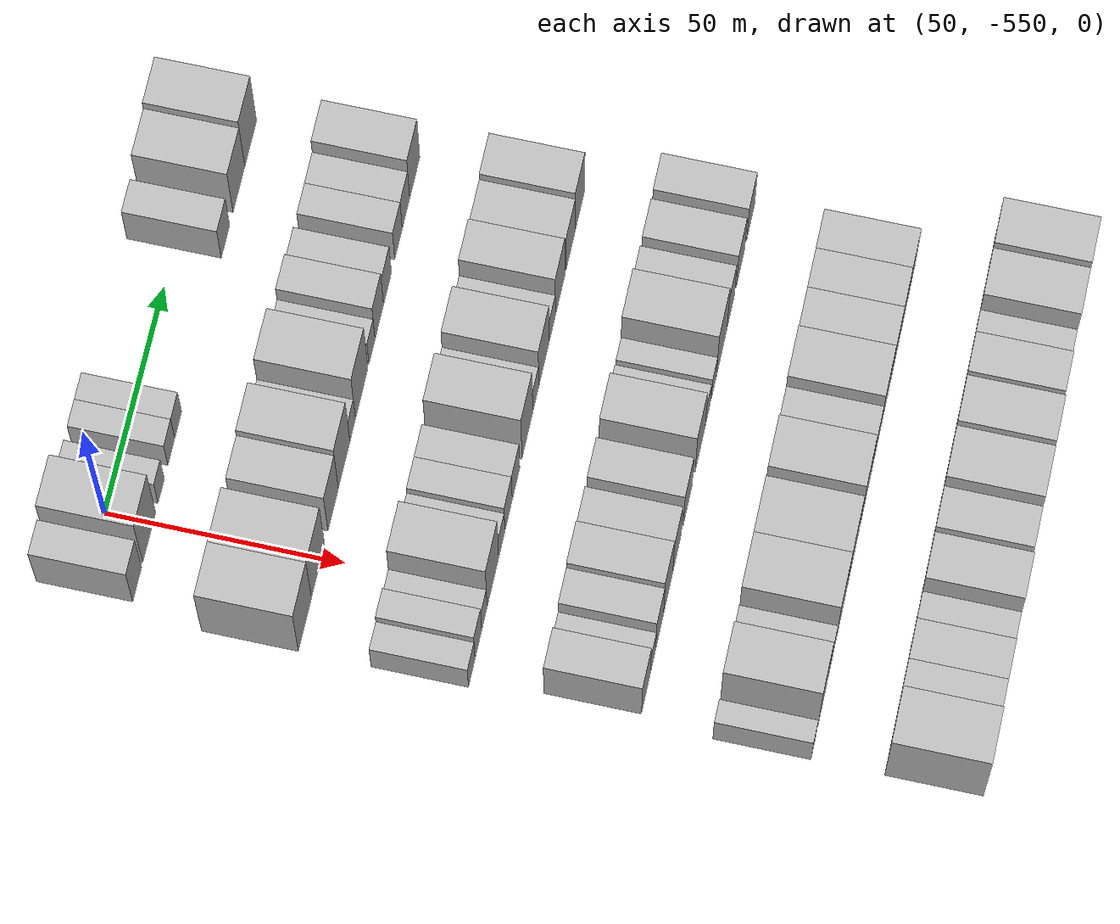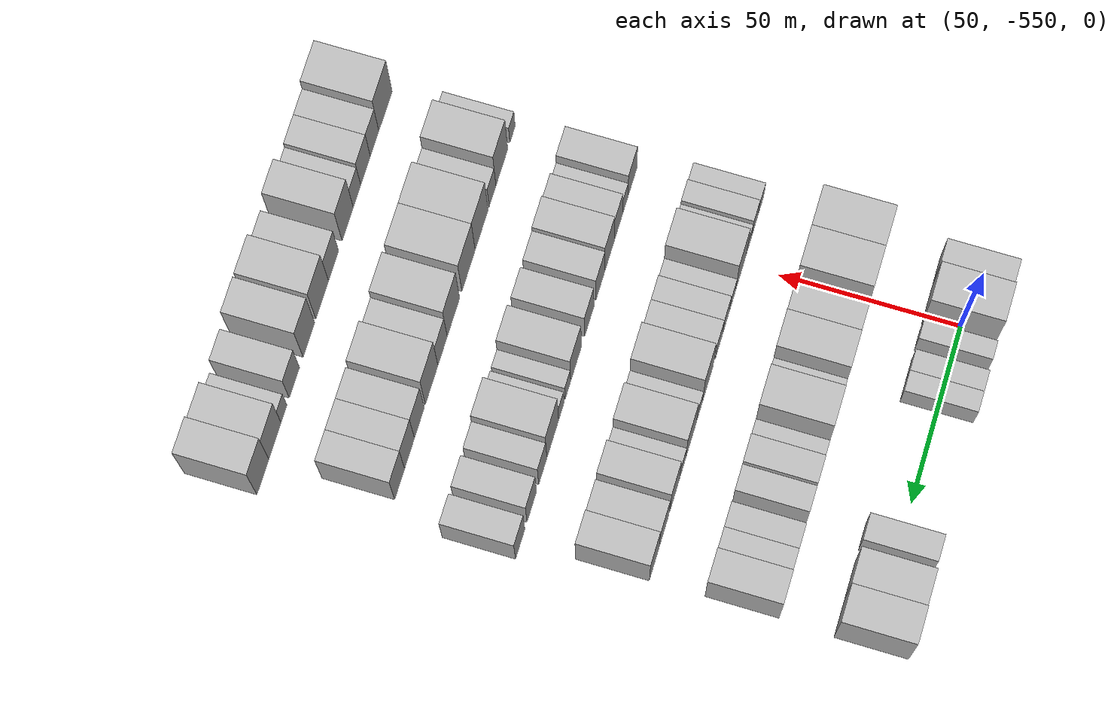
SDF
<sdf version="1.6">
 <world name="default">
  <model name="building_1">
   <static>1</static>
   <pose>50.0000 -563.3075 0 0.000000 0.000000 0.000000</pose>
   <link name="link">
    <pose>0 0 9.00 0 0 0</pose>
    <collision name="collision"><geometry><box><size>20.0000 7.3849 18.0000</size></box></geometry></collision>
    <visual name="visual">
     <cast_shadows>0</cast_shadows>
     <geometry><box><size>20.0000 7.3849 18.0000</size></box></geometry>
     <material>
      <script>
       <uri>model://HANNAS_wall/materials/scripts</uri>
       <uri>model://HANNAS_wall/materials/textures</uri>
       <name>vrc/HANNAS_wall</name>
      </script>
     </material>
    </visual>
   </link>
  </model>
  <model name="building_2">
   <static>1</static>
   <pose>50.0000 -553.1551 0 0.000000 0.000000 0.000000</pose>
   <link name="link">
    <pose>0 0 12.00 0 0 0</pose>
    <collision name="collision"><geometry><box><size>20.0000 10.9201 24.0000</size></box></geometry></collision>
    <visual name="visual">
     <cast_shadows>0</cast_shadows>
     <geometry><box><size>20.0000 10.9201 24.0000</size></box></geometry>
     <material>
      <script>
       <uri>model://HANNAS_wall/materials/scripts</uri>
       <uri>model://HANNAS_wall/materials/textures</uri>
       <name>vrc/HANNAS_wall</name>
      </script>
     </material>
    </visual>
   </link>
  </model>
  <model name="building_3">
   <static>1</static>
   <pose>50.0000 -543.0304 0 0.000000 0.000000 0.000000</pose>
   <link name="link">
    <pose>0 0 6.00 0 0 0</pose>
    <collision name="collision"><geometry><box><size>20.0000 5.3293 12.0000</size></box></geometry></collision>
    <visual name="visual">
     <cast_shadows>0</cast_shadows>
     <geometry><box><size>20.0000 5.3293 12.0000</size></box></geometry>
     <material>
      <script>
       <uri>model://HANNAS_wall/materials/scripts</uri>
       <uri>model://HANNAS_wall/materials/textures</uri>
       <name>vrc/HANNAS_wall</name>
      </script>
     </material>
    </visual>
   </link>
  </model>
  <model name="building_4">
   <static>1</static>
   <pose>50.0000 -534.4104 0 0.000000 0.000000 0.000000</pose>
   <link name="link">
    <pose>0 0 6.00 0 0 0</pose>
    <collision name="collision"><geometry><box><size>20.0000 5.9105 12.0000</size></box></geometry></collision>
    <visual name="visual">
     <cast_shadows>0</cast_shadows>
     <geometry><box><size>20.0000 5.9105 12.0000</size></box></geometry>
     <material>
      <script>
       <uri>model://HANNAS_wall/materials/scripts</uri>
       <uri>model://HANNAS_wall/materials/textures</uri>
       <name>vrc/HANNAS_wall</name>
      </script>
     </material>
    </visual>
   </link>
  </model>
  <model name="building_5">
   <static>1</static>
   <pose>50.0000 -528.5339 0 0.000000 0.000000 0.000000</pose>
   <link name="link">
    <pose>0 0 6.00 0 0 0</pose>
    <collision name="collision"><geometry><box><size>20.0000 5.8426 12.0000</size></box></geometry></collision>
    <visual name="visual">
     <cast_shadows>0</cast_shadows>
     <geometry><box><size>20.0000 5.8426 12.0000</size></box></geometry>
     <material>
      <script>
       <uri>model://HANNAS_wall/materials/scripts</uri>
       <uri>model://HANNAS_wall/materials/textures</uri>
       <name>vrc/HANNAS_wall</name>
      </script>
     </material>
    </visual>
   </link>
  </model>
  <model name="building_6">
   <static>1</static>
   <pose>50.0000 -487.5675 0 0.000000 0.000000 0.000000</pose>
   <link name="link">
    <pose>0 0 7.50 0 0 0</pose>
    <collision name="collision"><geometry><box><size>20.0000 7.3633 15.0000</size></box></geometry></collision>
    <visual name="visual">
     <cast_shadows>0</cast_shadows>
     <geometry><box><size>20.0000 7.3633 15.0000</size></box></geometry>
     <material>
      <script>
       <uri>model://HANNAS_wall/materials/scripts</uri>
       <uri>model://HANNAS_wall/materials/textures</uri>
       <name>vrc/HANNAS_wall</name>
      </script>
     </material>
    </visual>
   </link>
  </model>
  <model name="building_7">
   <static>1</static>
   <pose>50.0000 -475.6671 0 0.000000 0.000000 0.000000</pose>
   <link name="link">
    <pose>0 0 10.50 0 0 0</pose>
    <collision name="collision"><geometry><box><size>20.0000 10.4374 21.0000</size></box></geometry></collision>
    <visual name="visual">
     <cast_shadows>0</cast_shadows>
     <geometry><box><size>20.0000 10.4374 21.0000</size></box></geometry>
     <material>
      <script>
       <uri>model://HANNAS_wall/materials/scripts</uri>
       <uri>model://HANNAS_wall/materials/textures</uri>
       <name>vrc/HANNAS_wall</name>
      </script>
     </material>
    </visual>
   </link>
  </model>
  <model name="building_8">
   <static>1</static>
   <pose>50.0000 -465.2622 0 0.000000 0.000000 0.000000</pose>
   <link name="link">
    <pose>0 0 12.00 0 0 0</pose>
    <collision name="collision"><geometry><box><size>20.0000 10.3725 24.0000</size></box></geometry></collision>
    <visual name="visual">
     <cast_shadows>0</cast_shadows>
     <geometry><box><size>20.0000 10.3725 24.0000</size></box></geometry>
     <material>
      <script>
       <uri>model://HANNAS_wall/materials/scripts</uri>
       <uri>model://HANNAS_wall/materials/textures</uri>
       <name>vrc/HANNAS_wall</name>
      </script>
     </material>
    </visual>
   </link>
  </model>
  <model name="building_119">
   <static>1</static>
   <pose>85.0000 -564.2835 0 0.000000 0.000000 0.000000</pose>
   <link name="link">
    <pose>0 0 12.00 0 0 0</pose>
    <collision name="collision"><geometry><box><size>20.0000 11.4330 24.0000</size></box></geometry></collision>
    <visual name="visual">
     <cast_shadows>0</cast_shadows>
     <geometry><box><size>20.0000 11.4330 24.0000</size></box></geometry>
     <material>
      <script>
       <uri>model://HANNAS_wall/materials/scripts</uri>
       <uri>model://HANNAS_wall/materials/textures</uri>
       <name>vrc/HANNAS_wall</name>
      </script>
     </material>
    </visual>
   </link>
  </model>
  <model name="building_120">
   <static>1</static>
   <pose>85.0000 -552.7963 0 0.000000 0.000000 0.000000</pose>
   <link name="link">
    <pose>0 0 12.00 0 0 0</pose>
    <collision name="collision"><geometry><box><size>20.0000 11.5414 24.0000</size></box></geometry></collision>
    <visual name="visual">
     <cast_shadows>0</cast_shadows>
     <geometry><box><size>20.0000 11.5414 24.0000</size></box></geometry>
     <material>
      <script>
       <uri>model://HANNAS_wall/materials/scripts</uri>
       <uri>model://HANNAS_wall/materials/textures</uri>
       <name>vrc/HANNAS_wall</name>
      </script>
     </material>
    </visual>
   </link>
  </model>
  <model name="building_121">
   <static>1</static>
   <pose>85.0000 -539.4333 0 0.000000 0.000000 0.000000</pose>
   <link name="link">
    <pose>0 0 10.50 0 0 0</pose>
    <collision name="collision"><geometry><box><size>20.0000 9.1845 21.0000</size></box></geometry></collision>
    <visual name="visual">
     <cast_shadows>0</cast_shadows>
     <geometry><box><size>20.0000 9.1845 21.0000</size></box></geometry>
     <material>
      <script>
       <uri>model://HANNAS_wall/materials/scripts</uri>
       <uri>model://HANNAS_wall/materials/textures</uri>
       <name>vrc/HANNAS_wall</name>
      </script>
     </material>
    </visual>
   </link>
  </model>
  <model name="building_122">
   <static>1</static>
   <pose>85.0000 -529.6742 0 0.000000 0.000000 0.000000</pose>
   <link name="link">
    <pose>0 0 12.00 0 0 0</pose>
    <collision name="collision"><geometry><box><size>20.0000 10.3337 24.0000</size></box></geometry></collision>
    <visual name="visual">
     <cast_shadows>0</cast_shadows>
     <geometry><box><size>20.0000 10.3337 24.0000</size></box></geometry>
     <material>
      <script>
       <uri>model://HANNAS_wall/materials/scripts</uri>
       <uri>model://HANNAS_wall/materials/textures</uri>
       <name>vrc/HANNAS_wall</name>
      </script>
     </material>
    </visual>
   </link>
  </model>
  <model name="building_123">
   <static>1</static>
   <pose>85.0000 -521.9980 0 0.000000 0.000000 0.000000</pose>
   <link name="link">
    <pose>0 0 6.00 0 0 0</pose>
    <collision name="collision"><geometry><box><size>20.0000 5.0187 12.0000</size></box></geometry></collision>
    <visual name="visual">
     <cast_shadows>0</cast_shadows>
     <geometry><box><size>20.0000 5.0187 12.0000</size></box></geometry>
     <material>
      <script>
       <uri>model://HANNAS_wall/materials/scripts</uri>
       <uri>model://HANNAS_wall/materials/textures</uri>
       <name>vrc/HANNAS_wall</name>
      </script>
     </material>
    </visual>
   </link>
  </model>
  <model name="building_124">
   <static>1</static>
   <pose>85.0000 -513.9139 0 0.000000 0.000000 0.000000</pose>
   <link name="link">
    <pose>0 0 12.00 0 0 0</pose>
    <collision name="collision"><geometry><box><size>20.0000 11.1494 24.0000</size></box></geometry></collision>
    <visual name="visual">
     <cast_shadows>0</cast_shadows>
     <geometry><box><size>20.0000 11.1494 24.0000</size></box></geometry>
     <material>
      <script>
       <uri>model://HANNAS_wall/materials/scripts</uri>
       <uri>model://HANNAS_wall/materials/textures</uri>
       <name>vrc/HANNAS_wall</name>
      </script>
     </material>
    </visual>
   </link>
  </model>
  <model name="building_125">
   <static>1</static>
   <pose>85.0000 -504.5936 0 0.000000 0.000000 0.000000</pose>
   <link name="link">
    <pose>0 0 6.00 0 0 0</pose>
    <collision name="collision"><geometry><box><size>20.0000 5.4911 12.0000</size></box></geometry></collision>
    <visual name="visual">
     <cast_shadows>0</cast_shadows>
     <geometry><box><size>20.0000 5.4911 12.0000</size></box></geometry>
     <material>
      <script>
       <uri>model://HANNAS_wall/materials/scripts</uri>
       <uri>model://HANNAS_wall/materials/textures</uri>
       <name>vrc/HANNAS_wall</name>
      </script>
     </material>
    </visual>
   </link>
  </model>
  <model name="building_126">
   <static>1</static>
   <pose>85.0000 -497.9878 0 0.000000 0.000000 0.000000</pose>
   <link name="link">
    <pose>0 0 9.00 0 0 0</pose>
    <collision name="collision"><geometry><box><size>20.0000 7.7206 18.0000</size></box></geometry></collision>
    <visual name="visual">
     <cast_shadows>0</cast_shadows>
     <geometry><box><size>20.0000 7.7206 18.0000</size></box></geometry>
     <material>
      <script>
       <uri>model://HANNAS_wall/materials/scripts</uri>
       <uri>model://HANNAS_wall/materials/textures</uri>
       <name>vrc/HANNAS_wall</name>
      </script>
     </material>
    </visual>
   </link>
  </model>
  <model name="building_127">
   <static>1</static>
   <pose>85.0000 -490.5334 0 0.000000 0.000000 0.000000</pose>
   <link name="link">
    <pose>0 0 7.50 0 0 0</pose>
    <collision name="collision"><geometry><box><size>20.0000 7.1882 15.0000</size></box></geometry></collision>
    <visual name="visual">
     <cast_shadows>0</cast_shadows>
     <geometry><box><size>20.0000 7.1882 15.0000</size></box></geometry>
     <material>
      <script>
       <uri>model://HANNAS_wall/materials/scripts</uri>
       <uri>model://HANNAS_wall/materials/textures</uri>
       <name>vrc/HANNAS_wall</name>
      </script>
     </material>
    </visual>
   </link>
  </model>
  <model name="building_128">
   <static>1</static>
   <pose>85.0000 -480.4844 0 0.000000 0.000000 0.000000</pose>
   <link name="link">
    <pose>0 0 7.50 0 0 0</pose>
    <collision name="collision"><geometry><box><size>20.0000 6.9098 15.0000</size></box></geometry></collision>
    <visual name="visual">
     <cast_shadows>0</cast_shadows>
     <geometry><box><size>20.0000 6.9098 15.0000</size></box></geometry>
     <material>
      <script>
       <uri>model://HANNAS_wall/materials/scripts</uri>
       <uri>model://HANNAS_wall/materials/textures</uri>
       <name>vrc/HANNAS_wall</name>
      </script>
     </material>
    </visual>
   </link>
  </model>
  <model name="building_129">
   <static>1</static>
   <pose>85.0000 -473.5770 0 0.000000 0.000000 0.000000</pose>
   <link name="link">
    <pose>0 0 7.50 0 0 0</pose>
    <collision name="collision"><geometry><box><size>20.0000 6.9050 15.0000</size></box></geometry></collision>
    <visual name="visual">
     <cast_shadows>0</cast_shadows>
     <geometry><box><size>20.0000 6.9050 15.0000</size></box></geometry>
     <material>
      <script>
       <uri>model://HANNAS_wall/materials/scripts</uri>
       <uri>model://HANNAS_wall/materials/textures</uri>
       <name>vrc/HANNAS_wall</name>
      </script>
     </material>
    </visual>
   </link>
  </model>
  <model name="building_130">
   <static>1</static>
   <pose>85.0000 -465.4821 0 0.000000 0.000000 0.000000</pose>
   <link name="link">
    <pose>0 0 10.50 0 0 0</pose>
    <collision name="collision"><geometry><box><size>20.0000 9.2847 21.0000</size></box></geometry></collision>
    <visual name="visual">
     <cast_shadows>0</cast_shadows>
     <geometry><box><size>20.0000 9.2847 21.0000</size></box></geometry>
     <material>
      <script>
       <uri>model://HANNAS_wall/materials/scripts</uri>
       <uri>model://HANNAS_wall/materials/textures</uri>
       <name>vrc/HANNAS_wall</name>
      </script>
     </material>
    </visual>
   </link>
  </model>
  <model name="building_248">
   <static>1</static>
   <pose>120.0000 -567.0291 0 0.000000 0.000000 0.000000</pose>
   <link name="link">
    <pose>0 0 6.00 0 0 0</pose>
    <collision name="collision"><geometry><box><size>20.0000 5.9418 12.0000</size></box></geometry></collision>
    <visual name="visual">
     <cast_shadows>0</cast_shadows>
     <geometry><box><size>20.0000 5.9418 12.0000</size></box></geometry>
     <material>
      <script>
       <uri>model://HANNAS_wall/materials/scripts</uri>
       <uri>model://HANNAS_wall/materials/textures</uri>
       <name>vrc/HANNAS_wall</name>
      </script>
     </material>
    </visual>
   </link>
  </model>
  <model name="building_249">
   <static>1</static>
   <pose>120.0000 -560.9883 0 0.000000 0.000000 0.000000</pose>
   <link name="link">
    <pose>0 0 7.50 0 0 0</pose>
    <collision name="collision"><geometry><box><size>20.0000 6.1397 15.0000</size></box></geometry></collision>
    <visual name="visual">
     <cast_shadows>0</cast_shadows>
     <geometry><box><size>20.0000 6.1397 15.0000</size></box></geometry>
     <material>
      <script>
       <uri>model://HANNAS_wall/materials/scripts</uri>
       <uri>model://HANNAS_wall/materials/textures</uri>
       <name>vrc/HANNAS_wall</name>
      </script>
     </material>
    </visual>
   </link>
  </model>
  <model name="building_250">
   <static>1</static>
   <pose>120.0000 -555.4158 0 0.000000 0.000000 0.000000</pose>
   <link name="link">
    <pose>0 0 6.00 0 0 0</pose>
    <collision name="collision"><geometry><box><size>20.0000 5.0054 12.0000</size></box></geometry></collision>
    <visual name="visual">
     <cast_shadows>0</cast_shadows>
     <geometry><box><size>20.0000 5.0054 12.0000</size></box></geometry>
     <material>
      <script>
       <uri>model://HANNAS_wall/materials/scripts</uri>
       <uri>model://HANNAS_wall/materials/textures</uri>
       <name>vrc/HANNAS_wall</name>
      </script>
     </material>
    </visual>
   </link>
  </model>
  <model name="building_251">
   <static>1</static>
   <pose>120.0000 -547.5967 0 0.000000 0.000000 0.000000</pose>
   <link name="link">
    <pose>0 0 12.00 0 0 0</pose>
    <collision name="collision"><geometry><box><size>20.0000 10.6328 24.0000</size></box></geometry></collision>
    <visual name="visual">
     <cast_shadows>0</cast_shadows>
     <geometry><box><size>20.0000 10.6328 24.0000</size></box></geometry>
     <material>
      <script>
       <uri>model://HANNAS_wall/materials/scripts</uri>
       <uri>model://HANNAS_wall/materials/textures</uri>
       <name>vrc/HANNAS_wall</name>
      </script>
     </material>
    </visual>
   </link>
  </model>
  <model name="building_252">
   <static>1</static>
   <pose>120.0000 -539.4026 0 0.000000 0.000000 0.000000</pose>
   <link name="link">
    <pose>0 0 6.00 0 0 0</pose>
    <collision name="collision"><geometry><box><size>20.0000 5.7554 12.0000</size></box></geometry></collision>
    <visual name="visual">
     <cast_shadows>0</cast_shadows>
     <geometry><box><size>20.0000 5.7554 12.0000</size></box></geometry>
     <material>
      <script>
       <uri>model://HANNAS_wall/materials/scripts</uri>
       <uri>model://HANNAS_wall/materials/textures</uri>
       <name>vrc/HANNAS_wall</name>
      </script>
     </material>
    </visual>
   </link>
  </model>
  <model name="building_253">
   <static>1</static>
   <pose>120.0000 -533.1010 0 0.000000 0.000000 0.000000</pose>
   <link name="link">
    <pose>0 0 7.50 0 0 0</pose>
    <collision name="collision"><geometry><box><size>20.0000 6.8478 15.0000</size></box></geometry></collision>
    <visual name="visual">
     <cast_shadows>0</cast_shadows>
     <geometry><box><size>20.0000 6.8478 15.0000</size></box></geometry>
     <material>
      <script>
       <uri>model://HANNAS_wall/materials/scripts</uri>
       <uri>model://HANNAS_wall/materials/textures</uri>
       <name>vrc/HANNAS_wall</name>
      </script>
     </material>
    </visual>
   </link>
  </model>
  <model name="building_254">
   <static>1</static>
   <pose>120.0000 -526.1702 0 0.000000 0.000000 0.000000</pose>
   <link name="link">
    <pose>0 0 7.50 0 0 0</pose>
    <collision name="collision"><geometry><box><size>20.0000 7.0138 15.0000</size></box></geometry></collision>
    <visual name="visual">
     <cast_shadows>0</cast_shadows>
     <geometry><box><size>20.0000 7.0138 15.0000</size></box></geometry>
     <material>
      <script>
       <uri>model://HANNAS_wall/materials/scripts</uri>
       <uri>model://HANNAS_wall/materials/textures</uri>
       <name>vrc/HANNAS_wall</name>
      </script>
     </material>
    </visual>
   </link>
  </model>
  <model name="building_255">
   <static>1</static>
   <pose>120.0000 -515.5465 0 0.000000 0.000000 0.000000</pose>
   <link name="link">
    <pose>0 0 12.00 0 0 0</pose>
    <collision name="collision"><geometry><box><size>20.0000 10.2336 24.0000</size></box></geometry></collision>
    <visual name="visual">
     <cast_shadows>0</cast_shadows>
     <geometry><box><size>20.0000 10.2336 24.0000</size></box></geometry>
     <material>
      <script>
       <uri>model://HANNAS_wall/materials/scripts</uri>
       <uri>model://HANNAS_wall/materials/textures</uri>
       <name>vrc/HANNAS_wall</name>
      </script>
     </material>
    </visual>
   </link>
  </model>
  <model name="building_256">
   <static>1</static>
   <pose>120.0000 -507.5880 0 0.000000 0.000000 0.000000</pose>
   <link name="link">
    <pose>0 0 6.00 0 0 0</pose>
    <collision name="collision"><geometry><box><size>20.0000 5.6834 12.0000</size></box></geometry></collision>
    <visual name="visual">
     <cast_shadows>0</cast_shadows>
     <geometry><box><size>20.0000 5.6834 12.0000</size></box></geometry>
     <material>
      <script>
       <uri>model://HANNAS_wall/materials/scripts</uri>
       <uri>model://HANNAS_wall/materials/textures</uri>
       <name>vrc/HANNAS_wall</name>
      </script>
     </material>
    </visual>
   </link>
  </model>
  <model name="building_257">
   <static>1</static>
   <pose>120.0000 -499.7060 0 0.000000 0.000000 0.000000</pose>
   <link name="link">
    <pose>0 0 10.50 0 0 0</pose>
    <collision name="collision"><geometry><box><size>20.0000 10.0807 21.0000</size></box></geometry></collision>
    <visual name="visual">
     <cast_shadows>0</cast_shadows>
     <geometry><box><size>20.0000 10.0807 21.0000</size></box></geometry>
     <material>
      <script>
       <uri>model://HANNAS_wall/materials/scripts</uri>
       <uri>model://HANNAS_wall/materials/textures</uri>
       <name>vrc/HANNAS_wall</name>
      </script>
     </material>
    </visual>
   </link>
  </model>
  <model name="building_258">
   <static>1</static>
   <pose>120.0000 -491.7729 0 0.000000 0.000000 0.000000</pose>
   <link name="link">
    <pose>0 0 6.00 0 0 0</pose>
    <collision name="collision"><geometry><box><size>20.0000 5.7855 12.0000</size></box></geometry></collision>
    <visual name="visual">
     <cast_shadows>0</cast_shadows>
     <geometry><box><size>20.0000 5.7855 12.0000</size></box></geometry>
     <material>
      <script>
       <uri>model://HANNAS_wall/materials/scripts</uri>
       <uri>model://HANNAS_wall/materials/textures</uri>
       <name>vrc/HANNAS_wall</name>
      </script>
     </material>
    </visual>
   </link>
  </model>
  <model name="building_259">
   <static>1</static>
   <pose>120.0000 -484.3368 0 0.000000 0.000000 0.000000</pose>
   <link name="link">
    <pose>0 0 10.50 0 0 0</pose>
    <collision name="collision"><geometry><box><size>20.0000 9.0866 21.0000</size></box></geometry></collision>
    <visual name="visual">
     <cast_shadows>0</cast_shadows>
     <geometry><box><size>20.0000 9.0866 21.0000</size></box></geometry>
     <material>
      <script>
       <uri>model://HANNAS_wall/materials/scripts</uri>
       <uri>model://HANNAS_wall/materials/textures</uri>
       <name>vrc/HANNAS_wall</name>
      </script>
     </material>
    </visual>
   </link>
  </model>
  <model name="building_260">
   <static>1</static>
   <pose>120.0000 -474.3086 0 0.000000 0.000000 0.000000</pose>
   <link name="link">
    <pose>0 0 9.00 0 0 0</pose>
    <collision name="collision"><geometry><box><size>20.0000 8.9697 18.0000</size></box></geometry></collision>
    <visual name="visual">
     <cast_shadows>0</cast_shadows>
     <geometry><box><size>20.0000 8.9697 18.0000</size></box></geometry>
     <material>
      <script>
       <uri>model://HANNAS_wall/materials/scripts</uri>
       <uri>model://HANNAS_wall/materials/textures</uri>
       <name>vrc/HANNAS_wall</name>
      </script>
     </material>
    </visual>
   </link>
  </model>
  <model name="building_261">
   <static>1</static>
   <pose>120.0000 -465.2386 0 0.000000 0.000000 0.000000</pose>
   <link name="link">
    <pose>0 0 10.50 0 0 0</pose>
    <collision name="collision"><geometry><box><size>20.0000 9.1703 21.0000</size></box></geometry></collision>
    <visual name="visual">
     <cast_shadows>0</cast_shadows>
     <geometry><box><size>20.0000 9.1703 21.0000</size></box></geometry>
     <material>
      <script>
       <uri>model://HANNAS_wall/materials/scripts</uri>
       <uri>model://HANNAS_wall/materials/textures</uri>
       <name>vrc/HANNAS_wall</name>
      </script>
     </material>
    </visual>
   </link>
  </model>
  <model name="building_379">
   <static>1</static>
   <pose>155.0000 -563.7390 0 0.000000 0.000000 0.000000</pose>
   <link name="link">
    <pose>0 0 9.00 0 0 0</pose>
    <collision name="collision"><geometry><box><size>20.0000 8.5219 18.0000</size></box></geometry></collision>
    <visual name="visual">
     <cast_shadows>0</cast_shadows>
     <geometry><box><size>20.0000 8.5219 18.0000</size></box></geometry>
     <material>
      <script>
       <uri>model://HANNAS_wall/materials/scripts</uri>
       <uri>model://HANNAS_wall/materials/textures</uri>
       <name>vrc/HANNAS_wall</name>
      </script>
     </material>
    </visual>
   </link>
  </model>
  <model name="building_380">
   <static>1</static>
   <pose>155.0000 -556.9104 0 0.000000 0.000000 0.000000</pose>
   <link name="link">
    <pose>0 0 6.00 0 0 0</pose>
    <collision name="collision"><geometry><box><size>20.0000 5.1353 12.0000</size></box></geometry></collision>
    <visual name="visual">
     <cast_shadows>0</cast_shadows>
     <geometry><box><size>20.0000 5.1353 12.0000</size></box></geometry>
     <material>
      <script>
       <uri>model://HANNAS_wall/materials/scripts</uri>
       <uri>model://HANNAS_wall/materials/textures</uri>
       <name>vrc/HANNAS_wall</name>
      </script>
     </material>
    </visual>
   </link>
  </model>
  <model name="building_381">
   <static>1</static>
   <pose>155.0000 -550.5759 0 0.000000 0.000000 0.000000</pose>
   <link name="link">
    <pose>0 0 9.00 0 0 0</pose>
    <collision name="collision"><geometry><box><size>20.0000 7.5338 18.0000</size></box></geometry></collision>
    <visual name="visual">
     <cast_shadows>0</cast_shadows>
     <geometry><box><size>20.0000 7.5338 18.0000</size></box></geometry>
     <material>
      <script>
       <uri>model://HANNAS_wall/materials/scripts</uri>
       <uri>model://HANNAS_wall/materials/textures</uri>
       <name>vrc/HANNAS_wall</name>
      </script>
     </material>
    </visual>
   </link>
  </model>
  <model name="building_382">
   <static>1</static>
   <pose>155.0000 -542.3208 0 0.000000 0.000000 0.000000</pose>
   <link name="link">
    <pose>0 0 10.50 0 0 0</pose>
    <collision name="collision"><geometry><box><size>20.0000 8.9765 21.0000</size></box></geometry></collision>
    <visual name="visual">
     <cast_shadows>0</cast_shadows>
     <geometry><box><size>20.0000 8.9765 21.0000</size></box></geometry>
     <material>
      <script>
       <uri>model://HANNAS_wall/materials/scripts</uri>
       <uri>model://HANNAS_wall/materials/textures</uri>
       <name>vrc/HANNAS_wall</name>
      </script>
     </material>
    </visual>
   </link>
  </model>
  <model name="building_383">
   <static>1</static>
   <pose>155.0000 -533.6434 0 0.000000 0.000000 0.000000</pose>
   <link name="link">
    <pose>0 0 9.00 0 0 0</pose>
    <collision name="collision"><geometry><box><size>20.0000 8.3782 18.0000</size></box></geometry></collision>
    <visual name="visual">
     <cast_shadows>0</cast_shadows>
     <geometry><box><size>20.0000 8.3782 18.0000</size></box></geometry>
     <material>
      <script>
       <uri>model://HANNAS_wall/materials/scripts</uri>
       <uri>model://HANNAS_wall/materials/textures</uri>
       <name>vrc/HANNAS_wall</name>
      </script>
     </material>
    </visual>
   </link>
  </model>
  <model name="building_384">
   <static>1</static>
   <pose>155.0000 -523.1698 0 0.000000 0.000000 0.000000</pose>
   <link name="link">
    <pose>0 0 9.00 0 0 0</pose>
    <collision name="collision"><geometry><box><size>20.0000 8.5690 18.0000</size></box></geometry></collision>
    <visual name="visual">
     <cast_shadows>0</cast_shadows>
     <geometry><box><size>20.0000 8.5690 18.0000</size></box></geometry>
     <material>
      <script>
       <uri>model://HANNAS_wall/materials/scripts</uri>
       <uri>model://HANNAS_wall/materials/textures</uri>
       <name>vrc/HANNAS_wall</name>
      </script>
     </material>
    </visual>
   </link>
  </model>
  <model name="building_385">
   <static>1</static>
   <pose>155.0000 -510.9096 0 0.000000 0.000000 0.000000</pose>
   <link name="link">
    <pose>0 0 10.50 0 0 0</pose>
    <collision name="collision"><geometry><box><size>20.0000 9.9514 21.0000</size></box></geometry></collision>
    <visual name="visual">
     <cast_shadows>0</cast_shadows>
     <geometry><box><size>20.0000 9.9514 21.0000</size></box></geometry>
     <material>
      <script>
       <uri>model://HANNAS_wall/materials/scripts</uri>
       <uri>model://HANNAS_wall/materials/textures</uri>
       <name>vrc/HANNAS_wall</name>
      </script>
     </material>
    </visual>
   </link>
  </model>
  <model name="building_386">
   <static>1</static>
   <pose>155.0000 -503.4176 0 0.000000 0.000000 0.000000</pose>
   <link name="link">
    <pose>0 0 6.00 0 0 0</pose>
    <collision name="collision"><geometry><box><size>20.0000 5.0325 12.0000</size></box></geometry></collision>
    <visual name="visual">
     <cast_shadows>0</cast_shadows>
     <geometry><box><size>20.0000 5.0325 12.0000</size></box></geometry>
     <material>
      <script>
       <uri>model://HANNAS_wall/materials/scripts</uri>
       <uri>model://HANNAS_wall/materials/textures</uri>
       <name>vrc/HANNAS_wall</name>
      </script>
     </material>
    </visual>
   </link>
  </model>
  <model name="building_387">
   <static>1</static>
   <pose>155.0000 -497.4084 0 0.000000 0.000000 0.000000</pose>
   <link name="link">
    <pose>0 0 6.00 0 0 0</pose>
    <collision name="collision"><geometry><box><size>20.0000 4.9859 12.0000</size></box></geometry></collision>
    <visual name="visual">
     <cast_shadows>0</cast_shadows>
     <geometry><box><size>20.0000 4.9859 12.0000</size></box></geometry>
     <material>
      <script>
       <uri>model://HANNAS_wall/materials/scripts</uri>
       <uri>model://HANNAS_wall/materials/textures</uri>
       <name>vrc/HANNAS_wall</name>
      </script>
     </material>
    </visual>
   </link>
  </model>
  <model name="building_388">
   <static>1</static>
   <pose>155.0000 -489.5965 0 0.000000 0.000000 0.000000</pose>
   <link name="link">
    <pose>0 0 12.00 0 0 0</pose>
    <collision name="collision"><geometry><box><size>20.0000 10.6380 24.0000</size></box></geometry></collision>
    <visual name="visual">
     <cast_shadows>0</cast_shadows>
     <geometry><box><size>20.0000 10.6380 24.0000</size></box></geometry>
     <material>
      <script>
       <uri>model://HANNAS_wall/materials/scripts</uri>
       <uri>model://HANNAS_wall/materials/textures</uri>
       <name>vrc/HANNAS_wall</name>
      </script>
     </material>
    </visual>
   </link>
  </model>
  <model name="building_389">
   <static>1</static>
   <pose>155.0000 -480.5947 0 0.000000 0.000000 0.000000</pose>
   <link name="link">
    <pose>0 0 9.00 0 0 0</pose>
    <collision name="collision"><geometry><box><size>20.0000 7.3657 18.0000</size></box></geometry></collision>
    <visual name="visual">
     <cast_shadows>0</cast_shadows>
     <geometry><box><size>20.0000 7.3657 18.0000</size></box></geometry>
     <material>
      <script>
       <uri>model://HANNAS_wall/materials/scripts</uri>
       <uri>model://HANNAS_wall/materials/textures</uri>
       <name>vrc/HANNAS_wall</name>
      </script>
     </material>
    </visual>
   </link>
  </model>
  <model name="building_390">
   <static>1</static>
   <pose>155.0000 -470.6635 0 0.000000 0.000000 0.000000</pose>
   <link name="link">
    <pose>0 0 9.00 0 0 0</pose>
    <collision name="collision"><geometry><box><size>20.0000 8.4967 18.0000</size></box></geometry></collision>
    <visual name="visual">
     <cast_shadows>0</cast_shadows>
     <geometry><box><size>20.0000 8.4967 18.0000</size></box></geometry>
     <material>
      <script>
       <uri>model://HANNAS_wall/materials/scripts</uri>
       <uri>model://HANNAS_wall/materials/textures</uri>
       <name>vrc/HANNAS_wall</name>
      </script>
     </material>
    </visual>
   </link>
  </model>
  <model name="building_391">
   <static>1</static>
   <pose>155.0000 -460.3092 0 0.000000 0.000000 0.000000</pose>
   <link name="link">
    <pose>0 0 9.00 0 0 0</pose>
    <collision name="collision"><geometry><box><size>20.0000 8.2118 18.0000</size></box></geometry></collision>
    <visual name="visual">
     <cast_shadows>0</cast_shadows>
     <geometry><box><size>20.0000 8.2118 18.0000</size></box></geometry>
     <material>
      <script>
       <uri>model://HANNAS_wall/materials/scripts</uri>
       <uri>model://HANNAS_wall/materials/textures</uri>
       <name>vrc/HANNAS_wall</name>
      </script>
     </material>
    </visual>
   </link>
  </model>
  <model name="building_511">
   <static>1</static>
   <pose>190.0000 -567.5602 0 0.000000 0.000000 0.000000</pose>
   <link name="link">
    <pose>0 0 6.00 0 0 0</pose>
    <collision name="collision"><geometry><box><size>20.0000 4.8796 12.0000</size></box></geometry></collision>
    <visual name="visual">
     <cast_shadows>0</cast_shadows>
     <geometry><box><size>20.0000 4.8796 12.0000</size></box></geometry>
     <material>
      <script>
       <uri>model://HANNAS_wall/materials/scripts</uri>
       <uri>model://HANNAS_wall/materials/textures</uri>
       <name>vrc/HANNAS_wall</name>
      </script>
     </material>
    </visual>
   </link>
  </model>
  <model name="building_512">
   <static>1</static>
   <pose>190.0000 -557.7340 0 0.000000 0.000000 0.000000</pose>
   <link name="link">
    <pose>0 0 12.00 0 0 0</pose>
    <collision name="collision"><geometry><box><size>20.0000 10.7729 24.0000</size></box></geometry></collision>
    <visual name="visual">
     <cast_shadows>0</cast_shadows>
     <geometry><box><size>20.0000 10.7729 24.0000</size></box></geometry>
     <material>
      <script>
       <uri>model://HANNAS_wall/materials/scripts</uri>
       <uri>model://HANNAS_wall/materials/textures</uri>
       <name>vrc/HANNAS_wall</name>
      </script>
     </material>
    </visual>
   </link>
  </model>
  <model name="building_513">
   <static>1</static>
   <pose>190.0000 -549.2432 0 0.000000 0.000000 0.000000</pose>
   <link name="link">
    <pose>0 0 7.50 0 0 0</pose>
    <collision name="collision"><geometry><box><size>20.0000 6.2085 15.0000</size></box></geometry></collision>
    <visual name="visual">
     <cast_shadows>0</cast_shadows>
     <geometry><box><size>20.0000 6.2085 15.0000</size></box></geometry>
     <material>
      <script>
       <uri>model://HANNAS_wall/materials/scripts</uri>
       <uri>model://HANNAS_wall/materials/textures</uri>
       <name>vrc/HANNAS_wall</name>
      </script>
     </material>
    </visual>
   </link>
  </model>
  <model name="building_514">
   <static>1</static>
   <pose>190.0000 -539.2777 0 0.000000 0.000000 0.000000</pose>
   <link name="link">
    <pose>0 0 12.00 0 0 0</pose>
    <collision name="collision"><geometry><box><size>20.0000 11.7226 24.0000</size></box></geometry></collision>
    <visual name="visual">
     <cast_shadows>0</cast_shadows>
     <geometry><box><size>20.0000 11.7226 24.0000</size></box></geometry>
     <material>
      <script>
       <uri>model://HANNAS_wall/materials/scripts</uri>
       <uri>model://HANNAS_wall/materials/textures</uri>
       <name>vrc/HANNAS_wall</name>
      </script>
     </material>
    </visual>
   </link>
  </model>
  <model name="building_515">
   <static>1</static>
   <pose>190.0000 -527.4448 0 0.000000 0.000000 0.000000</pose>
   <link name="link">
    <pose>0 0 12.00 0 0 0</pose>
    <collision name="collision"><geometry><box><size>20.0000 11.9432 24.0000</size></box></geometry></collision>
    <visual name="visual">
     <cast_shadows>0</cast_shadows>
     <geometry><box><size>20.0000 11.9432 24.0000</size></box></geometry>
     <material>
      <script>
       <uri>model://HANNAS_wall/materials/scripts</uri>
       <uri>model://HANNAS_wall/materials/textures</uri>
       <name>vrc/HANNAS_wall</name>
      </script>
     </material>
    </visual>
   </link>
  </model>
  <model name="building_516">
   <static>1</static>
   <pose>190.0000 -513.9350 0 0.000000 0.000000 0.000000</pose>
   <link name="link">
    <pose>0 0 12.00 0 0 0</pose>
    <collision name="collision"><geometry><box><size>20.0000 11.0763 24.0000</size></box></geometry></collision>
    <visual name="visual">
     <cast_shadows>0</cast_shadows>
     <geometry><box><size>20.0000 11.0763 24.0000</size></box></geometry>
     <material>
      <script>
       <uri>model://HANNAS_wall/materials/scripts</uri>
       <uri>model://HANNAS_wall/materials/textures</uri>
       <name>vrc/HANNAS_wall</name>
      </script>
     </material>
    </visual>
   </link>
  </model>
  <model name="building_517">
   <static>1</static>
   <pose>190.0000 -504.2534 0 0.000000 0.000000 0.000000</pose>
   <link name="link">
    <pose>0 0 9.00 0 0 0</pose>
    <collision name="collision"><geometry><box><size>20.0000 8.2869 18.0000</size></box></geometry></collision>
    <visual name="visual">
     <cast_shadows>0</cast_shadows>
     <geometry><box><size>20.0000 8.2869 18.0000</size></box></geometry>
     <material>
      <script>
       <uri>model://HANNAS_wall/materials/scripts</uri>
       <uri>model://HANNAS_wall/materials/textures</uri>
       <name>vrc/HANNAS_wall</name>
      </script>
     </material>
    </visual>
   </link>
  </model>
  <model name="building_518">
   <static>1</static>
   <pose>190.0000 -494.5815 0 0.000000 0.000000 0.000000</pose>
   <link name="link">
    <pose>0 0 12.00 0 0 0</pose>
    <collision name="collision"><geometry><box><size>20.0000 11.0571 24.0000</size></box></geometry></collision>
    <visual name="visual">
     <cast_shadows>0</cast_shadows>
     <geometry><box><size>20.0000 11.0571 24.0000</size></box></geometry>
     <material>
      <script>
       <uri>model://HANNAS_wall/materials/scripts</uri>
       <uri>model://HANNAS_wall/materials/textures</uri>
       <name>vrc/HANNAS_wall</name>
      </script>
     </material>
    </visual>
   </link>
  </model>
  <model name="building_519">
   <static>1</static>
   <pose>190.0000 -483.7613 0 0.000000 0.000000 0.000000</pose>
   <link name="link">
    <pose>0 0 10.50 0 0 0</pose>
    <collision name="collision"><geometry><box><size>20.0000 8.5832 21.0000</size></box></geometry></collision>
    <visual name="visual">
     <cast_shadows>0</cast_shadows>
     <geometry><box><size>20.0000 8.5832 21.0000</size></box></geometry>
     <material>
      <script>
       <uri>model://HANNAS_wall/materials/scripts</uri>
       <uri>model://HANNAS_wall/materials/textures</uri>
       <name>vrc/HANNAS_wall</name>
      </script>
     </material>
    </visual>
   </link>
  </model>
  <model name="building_520">
   <static>1</static>
   <pose>190.0000 -475.1603 0 0.000000 0.000000 0.000000</pose>
   <link name="link">
    <pose>0 0 10.50 0 0 0</pose>
    <collision name="collision"><geometry><box><size>20.0000 8.6188 21.0000</size></box></geometry></collision>
    <visual name="visual">
     <cast_shadows>0</cast_shadows>
     <geometry><box><size>20.0000 8.6188 21.0000</size></box></geometry>
     <material>
      <script>
       <uri>model://HANNAS_wall/materials/scripts</uri>
       <uri>model://HANNAS_wall/materials/textures</uri>
       <name>vrc/HANNAS_wall</name>
      </script>
     </material>
    </visual>
   </link>
  </model>
  <model name="building_521">
   <static>1</static>
   <pose>190.0000 -466.5605 0 0.000000 0.000000 0.000000</pose>
   <link name="link">
    <pose>0 0 10.50 0 0 0</pose>
    <collision name="collision"><geometry><box><size>20.0000 8.5807 21.0000</size></box></geometry></collision>
    <visual name="visual">
     <cast_shadows>0</cast_shadows>
     <geometry><box><size>20.0000 8.5807 21.0000</size></box></geometry>
     <material>
      <script>
       <uri>model://HANNAS_wall/materials/scripts</uri>
       <uri>model://HANNAS_wall/materials/textures</uri>
       <name>vrc/HANNAS_wall</name>
      </script>
     </material>
    </visual>
   </link>
  </model>
  <model name="building_641">
   <static>1</static>
   <pose>225.0000 -564.0594 0 0.000000 0.000000 0.000000</pose>
   <link name="link">
    <pose>0 0 12.00 0 0 0</pose>
    <collision name="collision"><geometry><box><size>20.0000 11.8812 24.0000</size></box></geometry></collision>
    <visual name="visual">
     <cast_shadows>0</cast_shadows>
     <geometry><box><size>20.0000 11.8812 24.0000</size></box></geometry>
     <material>
      <script>
       <uri>model://HANNAS_wall/materials/scripts</uri>
       <uri>model://HANNAS_wall/materials/textures</uri>
       <name>vrc/HANNAS_wall</name>
      </script>
     </material>
    </visual>
   </link>
  </model>
  <model name="building_642">
   <static>1</static>
   <pose>225.0000 -554.3547 0 0.000000 0.000000 0.000000</pose>
   <link name="link">
    <pose>0 0 9.00 0 0 0</pose>
    <collision name="collision"><geometry><box><size>20.0000 7.5282 18.0000</size></box></geometry></collision>
    <visual name="visual">
     <cast_shadows>0</cast_shadows>
     <geometry><box><size>20.0000 7.5282 18.0000</size></box></geometry>
     <material>
      <script>
       <uri>model://HANNAS_wall/materials/scripts</uri>
       <uri>model://HANNAS_wall/materials/textures</uri>
       <name>vrc/HANNAS_wall</name>
      </script>
     </material>
    </visual>
   </link>
  </model>
  <model name="building_643">
   <static>1</static>
   <pose>225.0000 -546.3500 0 0.000000 0.000000 0.000000</pose>
   <link name="link">
    <pose>0 0 9.00 0 0 0</pose>
    <collision name="collision"><geometry><box><size>20.0000 8.4813 18.0000</size></box></geometry></collision>
    <visual name="visual">
     <cast_shadows>0</cast_shadows>
     <geometry><box><size>20.0000 8.4813 18.0000</size></box></geometry>
     <material>
      <script>
       <uri>model://HANNAS_wall/materials/scripts</uri>
       <uri>model://HANNAS_wall/materials/textures</uri>
       <name>vrc/HANNAS_wall</name>
      </script>
     </material>
    </visual>
   </link>
  </model>
  <model name="building_644">
   <static>1</static>
   <pose>225.0000 -538.8150 0 0.000000 0.000000 0.000000</pose>
   <link name="link">
    <pose>0 0 7.50 0 0 0</pose>
    <collision name="collision"><geometry><box><size>20.0000 6.5886 15.0000</size></box></geometry></collision>
    <visual name="visual">
     <cast_shadows>0</cast_shadows>
     <geometry><box><size>20.0000 6.5886 15.0000</size></box></geometry>
     <material>
      <script>
       <uri>model://HANNAS_wall/materials/scripts</uri>
       <uri>model://HANNAS_wall/materials/textures</uri>
       <name>vrc/HANNAS_wall</name>
      </script>
     </material>
    </visual>
   </link>
  </model>
  <model name="building_645">
   <static>1</static>
   <pose>225.0000 -530.6379 0 0.000000 0.000000 0.000000</pose>
   <link name="link">
    <pose>0 0 12.00 0 0 0</pose>
    <collision name="collision"><geometry><box><size>20.0000 9.7656 24.0000</size></box></geometry></collision>
    <visual name="visual">
     <cast_shadows>0</cast_shadows>
     <geometry><box><size>20.0000 9.7656 24.0000</size></box></geometry>
     <material>
      <script>
       <uri>model://HANNAS_wall/materials/scripts</uri>
       <uri>model://HANNAS_wall/materials/textures</uri>
       <name>vrc/HANNAS_wall</name>
      </script>
     </material>
    </visual>
   </link>
  </model>
  <model name="building_646">
   <static>1</static>
   <pose>225.0000 -518.3734 0 0.000000 0.000000 0.000000</pose>
   <link name="link">
    <pose>0 0 9.00 0 0 0</pose>
    <collision name="collision"><geometry><box><size>20.0000 8.7634 18.0000</size></box></geometry></collision>
    <visual name="visual">
     <cast_shadows>0</cast_shadows>
     <geometry><box><size>20.0000 8.7634 18.0000</size></box></geometry>
     <material>
      <script>
       <uri>model://HANNAS_wall/materials/scripts</uri>
       <uri>model://HANNAS_wall/materials/textures</uri>
       <name>vrc/HANNAS_wall</name>
      </script>
     </material>
    </visual>
   </link>
  </model>
  <model name="building_647">
   <static>1</static>
   <pose>225.0000 -508.5079 0 0.000000 0.000000 0.000000</pose>
   <link name="link">
    <pose>0 0 12.00 0 0 0</pose>
    <collision name="collision"><geometry><box><size>20.0000 10.9675 24.0000</size></box></geometry></collision>
    <visual name="visual">
     <cast_shadows>0</cast_shadows>
     <geometry><box><size>20.0000 10.9675 24.0000</size></box></geometry>
     <material>
      <script>
       <uri>model://HANNAS_wall/materials/scripts</uri>
       <uri>model://HANNAS_wall/materials/textures</uri>
       <name>vrc/HANNAS_wall</name>
      </script>
     </material>
    </visual>
   </link>
  </model>
  <model name="building_648">
   <static>1</static>
   <pose>225.0000 -497.0657 0 0.000000 0.000000 0.000000</pose>
   <link name="link">
    <pose>0 0 12.00 0 0 0</pose>
    <collision name="collision"><geometry><box><size>20.0000 9.9169 24.0000</size></box></geometry></collision>
    <visual name="visual">
     <cast_shadows>0</cast_shadows>
     <geometry><box><size>20.0000 9.9169 24.0000</size></box></geometry>
     <material>
      <script>
       <uri>model://HANNAS_wall/materials/scripts</uri>
       <uri>model://HANNAS_wall/materials/textures</uri>
       <name>vrc/HANNAS_wall</name>
      </script>
     </material>
    </visual>
   </link>
  </model>
  <model name="building_649">
   <static>1</static>
   <pose>225.0000 -484.7638 0 0.000000 0.000000 0.000000</pose>
   <link name="link">
    <pose>0 0 9.00 0 0 0</pose>
    <collision name="collision"><geometry><box><size>20.0000 8.6869 18.0000</size></box></geometry></collision>
    <visual name="visual">
     <cast_shadows>0</cast_shadows>
     <geometry><box><size>20.0000 8.6869 18.0000</size></box></geometry>
     <material>
      <script>
       <uri>model://HANNAS_wall/materials/scripts</uri>
       <uri>model://HANNAS_wall/materials/textures</uri>
       <name>vrc/HANNAS_wall</name>
      </script>
     </material>
    </visual>
   </link>
  </model>
  <model name="building_650">
   <static>1</static>
   <pose>225.0000 -475.9311 0 0.000000 0.000000 0.000000</pose>
   <link name="link">
    <pose>0 0 6.00 0 0 0</pose>
    <collision name="collision"><geometry><box><size>20.0000 4.9785 12.0000</size></box></geometry></collision>
    <visual name="visual">
     <cast_shadows>0</cast_shadows>
     <geometry><box><size>20.0000 4.9785 12.0000</size></box></geometry>
     <material>
      <script>
       <uri>model://HANNAS_wall/materials/scripts</uri>
       <uri>model://HANNAS_wall/materials/textures</uri>
       <name>vrc/HANNAS_wall</name>
      </script>
     </material>
    </visual>
   </link>
  </model>
  <model name="building_651">
   <static>1</static>
   <pose>225.0000 -468.3257 0 0.000000 0.000000 0.000000</pose>
   <link name="link">
    <pose>0 0 10.50 0 0 0</pose>
    <collision name="collision"><geometry><box><size>20.0000 10.2322 21.0000</size></box></geometry></collision>
    <visual name="visual">
     <cast_shadows>0</cast_shadows>
     <geometry><box><size>20.0000 10.2322 21.0000</size></box></geometry>
     <material>
      <script>
       <uri>model://HANNAS_wall/materials/scripts</uri>
       <uri>model://HANNAS_wall/materials/textures</uri>
       <name>vrc/HANNAS_wall</name>
      </script>
     </material>
    </visual>
   </link>
  </model>
  <model name="building_652">
   <static>1</static>
   <pose>225.0000 -458.2059 0 0.000000 0.000000 0.000000</pose>
   <link name="link">
    <pose>0 0 12.00 0 0 0</pose>
    <collision name="collision"><geometry><box><size>20.0000 10.0076 24.0000</size></box></geometry></collision>
    <visual name="visual">
     <cast_shadows>0</cast_shadows>
     <geometry><box><size>20.0000 10.0076 24.0000</size></box></geometry>
     <material>
      <script>
       <uri>model://HANNAS_wall/materials/scripts</uri>
       <uri>model://HANNAS_wall/materials/textures</uri>
       <name>vrc/HANNAS_wall</name>
      </script>
     </material>
    </visual>
   </link>
  </model>
 </world>
</sdf>
